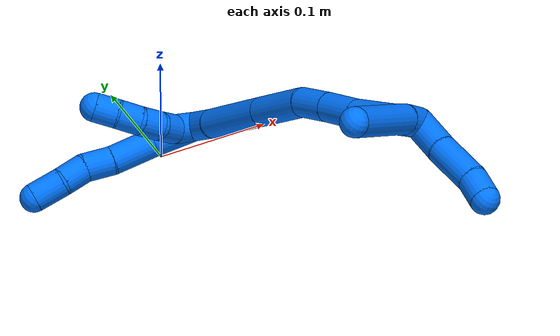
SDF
<sdf version="1.7">
 <world name="default">
  <model name="photoneo_s_sensor">
   <static>1</static>
   <pose>0 0 2 1.57079 1.57079 3.14159</pose>
   <link name="link">
    <inertial><mass>0.1</mass></inertial>
    <sensor name="sensor" type="depth">
     <update_rate>30</update_rate>
     <camera>
      <horizontal_fov>1.22</horizontal_fov>
      <image><width>1920</width><height>1200</height><format>B8G8R8</format></image>
      <clip><near>0.1</near><far>4</far></clip>
      <depth_camera><output>points</output></depth_camera>
     </camera>
     <plugin name="camera_plugin" filename="libgazebo_ros_depth_camera.so">
      <baseline>0.2</baseline>
      <alwaysOn>1</alwaysOn>
      <updateRate>0.0</updateRate>
      <cameraName>camera_ir</cameraName>
      <imageTopicName>/camera/color/image_raw</imageTopicName>
      <cameraInfoTopicName>/camera/color/camera_info</cameraInfoTopicName>
      <depthImageTopicName>/camera/depth/image_raw</depthImageTopicName>
      <depthImageCameraInfoTopicName>/camera/depth/camera_info</depthImageCameraInfoTopicName>
      <pointCloudTopicName>/camera/depth/points</pointCloudTopicName>
      <frameName>fr_optical</frameName>
      <pointCloudCutoff>0.1</pointCloudCutoff>
      <pointCloudCutoffMax>2.0</pointCloudCutoffMax>
      <distortionK1>0</distortionK1>
      <distortionK2>0</distortionK2>
      <distortionK3>0</distortionK3>
      <distortionT1>0</distortionT1>
      <distortionT2>0</distortionT2>
      <CxPrime>0</CxPrime>
      <Cx>0</Cx>
      <Cy>0</Cy>
      <focalLength>0</focalLength>
      <hackBaseline>0</hackBaseline>
     </plugin>
    </sensor>
   </link>
  </model>
  <model name="bin">
   <static>1</static>
   <link name="bottom">
    <collision name="collision-bottom">
     <pose>0 0 -0.01 0 -0 0</pose>
     <geometry><box><size>0.8 0.6 0.02</size></box></geometry>
     <surface>
      <friction><ode><mu>100</mu><mu2>100</mu2></ode></friction>
      <contact><collide_bitmask>65535</collide_bitmask></contact>
     </surface>
    </collision>
   </link>
   <link name="west_wall">
    <collision name="collision-west_wall">
     <pose>-0.41 0 0.1 0 -0 0</pose>
     <geometry><box><size>0.02 0.6 0.2</size></box></geometry>
     <surface>
      <friction><ode><mu>100</mu><mu2>100</mu2></ode></friction>
      <contact><collide_bitmask>65535</collide_bitmask></contact>
     </surface>
    </collision>
   </link>
   <link name="east_wall">
    <collision name="collision-east_wall">
     <pose>0.41 0 0.1 0 -0 0</pose>
     <geometry><box><size>0.02 0.6 0.2</size></box></geometry>
     <surface>
      <friction><ode><mu>100</mu><mu2>100</mu2></ode></friction>
      <contact><collide_bitmask>65535</collide_bitmask></contact>
     </surface>
    </collision>
   </link>
   <link name="south_wall">
    <collision name="collision-south_wall">
     <pose>0 -0.31 0.1 0 -0 0</pose>
     <geometry><box><size>0.8 0.02 0.2</size></box></geometry>
     <surface>
      <friction><ode><mu>100</mu><mu2>100</mu2></ode></friction>
      <contact><collide_bitmask>65535</collide_bitmask></contact>
     </surface>
    </collision>
   </link>
   <link name="north_wall">
    <collision name="collision-north_wall">
     <pose>0 0.31 0.1 0 -0 0</pose>
     <geometry><box><size>0.8 0.02 0.2</size></box></geometry>
     <surface>
      <friction><ode><mu>100</mu><mu2>100</mu2></ode></friction>
      <contact><collide_bitmask>65535</collide_bitmask></contact>
     </surface>
    </collision>
   </link>
  </model>
  <model name="14">
   <static>0</static>
   <link name="14">
    <collision name="collision-cylinder-e_1_2_8">
     <pose>-0.012861 0.00405 -0.012396 -2.8258 -0.778433 2.40098</pose>
     <geometry><cylinder><radius>0.0125</radius><length>0.036632</length></cylinder></geometry>
     <surface>
      <friction><ode><mu>1.16</mu><mu2>1.16</mu2><slip1>0</slip1><slip2>0</slip2></ode></friction>
      <contact><ode><kp>1e+06</kp><kd>1</kd><max_vel>0</max_vel><min_depth>0.001</min_depth></ode></contact>
     </surface>
    </collision>
    <visual name="visual-cylinder-e_1_2_8">
     <pose>-0.012861 0.00405 -0.012396 -2.8258 -0.778433 2.40098</pose>
     <geometry><cylinder><radius>0.0125</radius><length>0.036632</length></cylinder></geometry>
     <material><ambient>0 0.462745 1 1</ambient></material>
    </visual>
    <collision name="collision-cylinder-e_2_8_9">
     <pose>-0.041208 0.010443 -0.035934 -2.93433 -0.93686 2.73615</pose>
     <geometry><cylinder><radius>0.0125</radius><length>0.038441</length></cylinder></geometry>
     <surface>
      <friction><ode><mu>1.16</mu><mu2>1.16</mu2><slip1>0</slip1><slip2>0</slip2></ode></friction>
      <contact><ode><kp>1e+06</kp><kd>1</kd><max_vel>0</max_vel><min_depth>0.001</min_depth></ode></contact>
     </surface>
    </collision>
    <visual name="visual-cylinder-e_2_8_9">
     <pose>-0.041208 0.010443 -0.035934 -2.93433 -0.93686 2.73615</pose>
     <geometry><cylinder><radius>0.0125</radius><length>0.038441</length></cylinder></geometry>
     <material><ambient>0 0.462745 1 1</ambient></material>
    </visual>
    <collision name="collision-cylinder-e_3_9_10">
     <pose>-0.066648 0.016183 -0.053648 -2.6646 -0.931554 2.2406</pose>
     <geometry><cylinder><radius>0.0125</radius><length>0.024806</length></cylinder></geometry>
     <surface>
      <friction><ode><mu>1.16</mu><mu2>1.16</mu2><slip1>0</slip1><slip2>0</slip2></ode></friction>
      <contact><ode><kp>1e+06</kp><kd>1</kd><max_vel>0</max_vel><min_depth>0.001</min_depth></ode></contact>
     </surface>
    </collision>
    <visual name="visual-cylinder-e_3_9_10">
     <pose>-0.066648 0.016183 -0.053648 -2.6646 -0.931554 2.2406</pose>
     <geometry><cylinder><radius>0.0125</radius><length>0.024806</length></cylinder></geometry>
     <material><ambient>0 0.462745 1 1</ambient></material>
    </visual>
    <collision name="collision-cylinder-e_4_10_11">
     <pose>-0.08631 0.018946 -0.066165 3.03523 -1.01896 -2.95159</pose>
     <geometry><cylinder><radius>0.0125</radius><length>0.022801</length></cylinder></geometry>
     <surface>
      <friction><ode><mu>1.16</mu><mu2>1.16</mu2><slip1>0</slip1><slip2>0</slip2></ode></friction>
      <contact><ode><kp>1e+06</kp><kd>1</kd><max_vel>0</max_vel><min_depth>0.001</min_depth></ode></contact>
     </surface>
    </collision>
    <visual name="visual-cylinder-e_4_10_11">
     <pose>-0.08631 0.018946 -0.066165 3.03523 -1.01896 -2.95159</pose>
     <geometry><cylinder><radius>0.0125</radius><length>0.022801</length></cylinder></geometry>
     <material><ambient>0 0.462745 1 1</ambient></material>
    </visual>
    <collision name="collision-cylinder-e_5_11_6">
     <pose>-0.106066 0.019091 -0.081329 -3.05724 -0.826482 2.94969</pose>
     <geometry><cylinder><radius>0.0125</radius><length>0.027321</length></cylinder></geometry>
     <surface>
      <friction><ode><mu>1.16</mu><mu2>1.16</mu2><slip1>0</slip1><slip2>0</slip2></ode></friction>
      <contact><ode><kp>1e+06</kp><kd>1</kd><max_vel>0</max_vel><min_depth>0.001</min_depth></ode></contact>
     </surface>
    </collision>
    <visual name="visual-cylinder-e_5_11_6">
     <pose>-0.106066 0.019091 -0.081329 -3.05724 -0.826482 2.94969</pose>
     <geometry><cylinder><radius>0.0125</radius><length>0.027321</length></cylinder></geometry>
     <material><ambient>0 0.462745 1 1</ambient></material>
    </visual>
    <collision name="collision-cylinder-e_1_2_12">
     <pose>-0.00982 0.001644 -0.000936 -2.08821 -1.38051 1.91455</pose>
     <geometry><cylinder><radius>0.0125</radius><length>0.02</length></cylinder></geometry>
     <surface>
      <friction><ode><mu>1.16</mu><mu2>1.16</mu2><slip1>0</slip1><slip2>0</slip2></ode></friction>
      <contact><ode><kp>1e+06</kp><kd>1</kd><max_vel>0</max_vel><min_depth>0.001</min_depth></ode></contact>
     </surface>
    </collision>
    <visual name="visual-cylinder-e_1_2_12">
     <pose>-0.00982 0.001644 -0.000936 -2.08821 -1.38051 1.91455</pose>
     <geometry><cylinder><radius>0.0125</radius><length>0.02</length></cylinder></geometry>
     <material><ambient>0 0.462745 1 1</ambient></material>
    </visual>
    <collision name="collision-cylinder-e_2_12_13">
     <pose>-0.029115 0.005331 0.000585 -0.693883 -1.24558 0.508083</pose>
     <geometry><cylinder><radius>0.0125</radius><length>0.02</length></cylinder></geometry>
     <surface>
      <friction><ode><mu>1.16</mu><mu2>1.16</mu2><slip1>0</slip1><slip2>0</slip2></ode></friction>
      <contact><ode><kp>1e+06</kp><kd>1</kd><max_vel>0</max_vel><min_depth>0.001</min_depth></ode></contact>
     </surface>
    </collision>
    <visual name="visual-cylinder-e_2_12_13">
     <pose>-0.029115 0.005331 0.000585 -0.693883 -1.24558 0.508083</pose>
     <geometry><cylinder><radius>0.0125</radius><length>0.02</length></cylinder></geometry>
     <material><ambient>0 0.462745 1 1</ambient></material>
    </visual>
    <collision name="collision-cylinder-e_3_13_14">
     <pose>-0.047544 0.011797 0.003561 -1.45388 -1.10923 1.00718</pose>
     <geometry><cylinder><radius>0.0125</radius><length>0.02</length></cylinder></geometry>
     <surface>
      <friction><ode><mu>1.16</mu><mu2>1.16</mu2><slip1>0</slip1><slip2>0</slip2></ode></friction>
      <contact><ode><kp>1e+06</kp><kd>1</kd><max_vel>0</max_vel><min_depth>0.001</min_depth></ode></contact>
     </surface>
    </collision>
    <visual name="visual-cylinder-e_3_13_14">
     <pose>-0.047544 0.011797 0.003561 -1.45388 -1.10923 1.00718</pose>
     <geometry><cylinder><radius>0.0125</radius><length>0.02</length></cylinder></geometry>
     <material><ambient>0 0.462745 1 1</ambient></material>
    </visual>
    <collision name="collision-cylinder-e_4_14_15">
     <pose>-0.064052 0.022648 0.002806 -1.76653 -0.856284 1.01448</pose>
     <geometry><cylinder><radius>0.0125</radius><length>0.02</length></cylinder></geometry>
     <surface>
      <friction><ode><mu>1.16</mu><mu2>1.16</mu2><slip1>0</slip1><slip2>0</slip2></ode></friction>
      <contact><ode><kp>1e+06</kp><kd>1</kd><max_vel>0</max_vel><min_depth>0.001</min_depth></ode></contact>
     </surface>
    </collision>
    <visual name="visual-cylinder-e_4_14_15">
     <pose>-0.064052 0.022648 0.002806 -1.76653 -0.856284 1.01448</pose>
     <geometry><cylinder><radius>0.0125</radius><length>0.02</length></cylinder></geometry>
     <material><ambient>0 0.462745 1 1</ambient></material>
    </visual>
    <collision name="collision-cylinder-e_5_15_5">
     <pose>-0.078273 0.03613 -0.000871 -1.89906 -0.72983 0.980464</pose>
     <geometry><cylinder><radius>0.0125</radius><length>0.02</length></cylinder></geometry>
     <surface>
      <friction><ode><mu>1.16</mu><mu2>1.16</mu2><slip1>0</slip1><slip2>0</slip2></ode></friction>
      <contact><ode><kp>1e+06</kp><kd>1</kd><max_vel>0</max_vel><min_depth>0.001</min_depth></ode></contact>
     </surface>
    </collision>
    <visual name="visual-cylinder-e_5_15_5">
     <pose>-0.078273 0.03613 -0.000871 -1.89906 -0.72983 0.980464</pose>
     <geometry><cylinder><radius>0.0125</radius><length>0.02</length></cylinder></geometry>
     <material><ambient>0 0.462745 1 1</ambient></material>
    </visual>
    <collision name="collision-cylinder-e_1_2_16">
     <pose>-0.002891 -0.007161 0.012158 0.532287 -0.202107 -0.055271</pose>
     <geometry><cylinder><radius>0.0125</radius><length>0.028808</length></cylinder></geometry>
     <surface>
      <friction><ode><mu>1.16</mu><mu2>1.16</mu2><slip1>0</slip1><slip2>0</slip2></ode></friction>
      <contact><ode><kp>1e+06</kp><kd>1</kd><max_vel>0</max_vel><min_depth>0.001</min_depth></ode></contact>
     </surface>
    </collision>
    <visual name="visual-cylinder-e_1_2_16">
     <pose>-0.002891 -0.007161 0.012158 0.532287 -0.202107 -0.055271</pose>
     <geometry><cylinder><radius>0.0125</radius><length>0.028808</length></cylinder></geometry>
     <material><ambient>0 0.462745 1 1</ambient></material>
    </visual>
    <collision name="collision-cylinder-e_2_16_17">
     <pose>-0.010934 -0.031179 0.055533 0.495135 -0.144194 -0.036505</pose>
     <geometry><cylinder><radius>0.0125</radius><length>0.071697</length></cylinder></geometry>
     <surface>
      <friction><ode><mu>1.16</mu><mu2>1.16</mu2><slip1>0</slip1><slip2>0</slip2></ode></friction>
      <contact><ode><kp>1e+06</kp><kd>1</kd><max_vel>0</max_vel><min_depth>0.001</min_depth></ode></contact>
     </surface>
    </collision>
    <visual name="visual-cylinder-e_2_16_17">
     <pose>-0.010934 -0.031179 0.055533 0.495135 -0.144194 -0.036505</pose>
     <geometry><cylinder><radius>0.0125</radius><length>0.071697</length></cylinder></geometry>
     <material><ambient>0 0.462745 1 1</ambient></material>
    </visual>
    <collision name="collision-cylinder-e_3_17_18">
     <pose>-0.020153 -0.061563 0.111483 0.500448 -0.1433 -0.036683</pose>
     <geometry><cylinder><radius>0.0125</radius><length>0.056966</length></cylinder></geometry>
     <surface>
      <friction><ode><mu>1.16</mu><mu2>1.16</mu2><slip1>0</slip1><slip2>0</slip2></ode></friction>
      <contact><ode><kp>1e+06</kp><kd>1</kd><max_vel>0</max_vel><min_depth>0.001</min_depth></ode></contact>
     </surface>
    </collision>
    <visual name="visual-cylinder-e_3_17_18">
     <pose>-0.020153 -0.061563 0.111483 0.500448 -0.1433 -0.036683</pose>
     <geometry><cylinder><radius>0.0125</radius><length>0.056966</length></cylinder></geometry>
     <material><ambient>0 0.462745 1 1</ambient></material>
    </visual>
    <collision name="collision-cylinder-e_4_18_19">
     <pose>-0.026855 -0.086714 0.14831 0.765674 -0.155779 -0.06284</pose>
     <geometry><cylinder><radius>0.0125</radius><length>0.03396</length></cylinder></geometry>
     <surface>
      <friction><ode><mu>1.16</mu><mu2>1.16</mu2><slip1>0</slip1><slip2>0</slip2></ode></friction>
      <contact><ode><kp>1e+06</kp><kd>1</kd><max_vel>0</max_vel><min_depth>0.001</min_depth></ode></contact>
     </surface>
    </collision>
    <visual name="visual-cylinder-e_4_18_19">
     <pose>-0.026855 -0.086714 0.14831 0.765674 -0.155779 -0.06284</pose>
     <geometry><cylinder><radius>0.0125</radius><length>0.03396</length></cylinder></geometry>
     <material><ambient>0 0.462745 1 1</ambient></material>
    </visual>
    <collision name="collision-cylinder-e_5_19_20">
     <pose>-0.032144 -0.111097 0.172831 0.79851 -0.147959 -0.06252</pose>
     <geometry><cylinder><radius>0.0125</radius><length>0.036016</length></cylinder></geometry>
     <surface>
      <friction><ode><mu>1.16</mu><mu2>1.16</mu2><slip1>0</slip1><slip2>0</slip2></ode></friction>
      <contact><ode><kp>1e+06</kp><kd>1</kd><max_vel>0</max_vel><min_depth>0.001</min_depth></ode></contact>
     </surface>
    </collision>
    <visual name="visual-cylinder-e_5_19_20">
     <pose>-0.032144 -0.111097 0.172831 0.79851 -0.147959 -0.06252</pose>
     <geometry><cylinder><radius>0.0125</radius><length>0.036016</length></cylinder></geometry>
     <material><ambient>0 0.462745 1 1</ambient></material>
    </visual>
    <collision name="collision-cylinder-e_6_20_1">
     <pose>-0.038424 -0.148241 0.211871 0.741754 -0.100103 -0.038955</pose>
     <geometry><cylinder><radius>0.0125</radius><length>0.072554</length></cylinder></geometry>
     <surface>
      <friction><ode><mu>1.16</mu><mu2>1.16</mu2><slip1>0</slip1><slip2>0</slip2></ode></friction>
      <contact><ode><kp>1e+06</kp><kd>1</kd><max_vel>0</max_vel><min_depth>0.001</min_depth></ode></contact>
     </surface>
    </collision>
    <visual name="visual-cylinder-e_6_20_1">
     <pose>-0.038424 -0.148241 0.211871 0.741754 -0.100103 -0.038955</pose>
     <geometry><cylinder><radius>0.0125</radius><length>0.072554</length></cylinder></geometry>
     <material><ambient>0 0.462745 1 1</ambient></material>
    </visual>
    <collision name="collision-cylinder-e_1_1_21">
     <pose>-0.046238 -0.189578 0.243777 1.26813 -0.231596 -0.170656</pose>
     <geometry><cylinder><radius>0.0125</radius><length>0.036493</length></cylinder></geometry>
     <surface>
      <friction><ode><mu>1.16</mu><mu2>1.16</mu2><slip1>0</slip1><slip2>0</slip2></ode></friction>
      <contact><ode><kp>1e+06</kp><kd>1</kd><max_vel>0</max_vel><min_depth>0.001</min_depth></ode></contact>
     </surface>
    </collision>
    <visual name="visual-cylinder-e_1_1_21">
     <pose>-0.046238 -0.189578 0.243777 1.26813 -0.231596 -0.170656</pose>
     <geometry><cylinder><radius>0.0125</radius><length>0.036493</length></cylinder></geometry>
     <material><ambient>0 0.462745 1 1</ambient></material>
    </visual>
    <collision name="collision-cylinder-e_2_21_22">
     <pose>-0.053254 -0.225891 0.255237 1.26244 -0.138281 -0.101156</pose>
     <geometry><cylinder><radius>0.0125</radius><length>0.041028</length></cylinder></geometry>
     <surface>
      <friction><ode><mu>1.16</mu><mu2>1.16</mu2><slip1>0</slip1><slip2>0</slip2></ode></friction>
      <contact><ode><kp>1e+06</kp><kd>1</kd><max_vel>0</max_vel><min_depth>0.001</min_depth></ode></contact>
     </surface>
    </collision>
    <visual name="visual-cylinder-e_2_21_22">
     <pose>-0.053254 -0.225891 0.255237 1.26244 -0.138281 -0.101156</pose>
     <geometry><cylinder><radius>0.0125</radius><length>0.041028</length></cylinder></geometry>
     <material><ambient>0 0.462745 1 1</ambient></material>
    </visual>
    <collision name="collision-cylinder-e_3_22_4">
     <pose>-0.059264 -0.255882 0.263183 1.40494 -0.287138 -0.243542</pose>
     <geometry><cylinder><radius>0.0125</radius><length>0.022478</length></cylinder></geometry>
     <surface>
      <friction><ode><mu>1.16</mu><mu2>1.16</mu2><slip1>0</slip1><slip2>0</slip2></ode></friction>
      <contact><ode><kp>1e+06</kp><kd>1</kd><max_vel>0</max_vel><min_depth>0.001</min_depth></ode></contact>
     </surface>
    </collision>
    <visual name="visual-cylinder-e_3_22_4">
     <pose>-0.059264 -0.255882 0.263183 1.40494 -0.287138 -0.243542</pose>
     <geometry><cylinder><radius>0.0125</radius><length>0.022478</length></cylinder></geometry>
     <material><ambient>0 0.462745 1 1</ambient></material>
    </visual>
    <collision name="collision-cylinder-e_1_1_23">
     <pose>-0.052373 -0.17138 0.242127 -0.329694 -1.2138 0.22999</pose>
     <geometry><cylinder><radius>0.0125</radius><length>0.022036</length></cylinder></geometry>
     <surface>
      <friction><ode><mu>1.16</mu><mu2>1.16</mu2><slip1>0</slip1><slip2>0</slip2></ode></friction>
      <contact><ode><kp>1e+06</kp><kd>1</kd><max_vel>0</max_vel><min_depth>0.001</min_depth></ode></contact>
     </surface>
    </collision>
    <visual name="visual-cylinder-e_1_1_23">
     <pose>-0.052373 -0.17138 0.242127 -0.329694 -1.2138 0.22999</pose>
     <geometry><cylinder><radius>0.0125</radius><length>0.022036</length></cylinder></geometry>
     <material><ambient>0 0.462745 1 1</ambient></material>
    </visual>
    <collision name="collision-cylinder-e_2_23_3">
     <pose>-0.100382 -0.170957 0.255704 0.082755 -1.3122 -0.063726</pose>
     <geometry><cylinder><radius>0.0125</radius><length>0.077964</length></cylinder></geometry>
     <surface>
      <friction><ode><mu>1.16</mu><mu2>1.16</mu2><slip1>0</slip1><slip2>0</slip2></ode></friction>
      <contact><ode><kp>1e+06</kp><kd>1</kd><max_vel>0</max_vel><min_depth>0.001</min_depth></ode></contact>
     </surface>
    </collision>
    <visual name="visual-cylinder-e_2_23_3">
     <pose>-0.100382 -0.170957 0.255704 0.082755 -1.3122 -0.063726</pose>
     <geometry><cylinder><radius>0.0125</radius><length>0.077964</length></cylinder></geometry>
     <material><ambient>0 0.462745 1 1</ambient></material>
    </visual>
    <collision name="collision-sphere-3">
     <pose>-0.138068 -0.171781 0.265639 0 -0 0</pose>
     <geometry><sphere><radius>0.0125</radius></sphere></geometry>
     <surface>
      <friction><ode><mu>1.16</mu><mu2>1.16</mu2><slip1>0</slip1><slip2>0</slip2></ode></friction>
      <contact><ode><kp>1e+06</kp><kd>1</kd><max_vel>0</max_vel><min_depth>0.001</min_depth></ode></contact>
     </surface>
    </collision>
    <visual name="visual-sphere-3">
     <pose>-0.138068 -0.171781 0.265639 0 -0 0</pose>
     <geometry><sphere><radius>0.0125</radius></sphere></geometry>
     <material><ambient>0 0.462745 1 1</ambient></material>
    </visual>
    <collision name="collision-sphere-23">
     <pose>-0.062696 -0.170133 0.24577 0 -0 0</pose>
     <geometry><sphere><radius>0.0125</radius></sphere></geometry>
     <surface>
      <friction><ode><mu>1.16</mu><mu2>1.16</mu2><slip1>0</slip1><slip2>0</slip2></ode></friction>
      <contact><ode><kp>1e+06</kp><kd>1</kd><max_vel>0</max_vel><min_depth>0.001</min_depth></ode></contact>
     </surface>
    </collision>
    <visual name="visual-sphere-23">
     <pose>-0.062696 -0.170133 0.24577 0 -0 0</pose>
     <geometry><sphere><radius>0.0125</radius></sphere></geometry>
     <material><ambient>0 0.462745 1 1</ambient></material>
    </visual>
    <collision name="collision-sphere-4">
     <pose>-0.062447 -0.266513 0.264963 0 -0 0</pose>
     <geometry><sphere><radius>0.0125</radius></sphere></geometry>
     <surface>
      <friction><ode><mu>1.16</mu><mu2>1.16</mu2><slip1>0</slip1><slip2>0</slip2></ode></friction>
      <contact><ode><kp>1e+06</kp><kd>1</kd><max_vel>0</max_vel><min_depth>0.001</min_depth></ode></contact>
     </surface>
    </collision>
    <visual name="visual-sphere-4">
     <pose>-0.062447 -0.266513 0.264963 0 -0 0</pose>
     <geometry><sphere><radius>0.0125</radius></sphere></geometry>
     <material><ambient>0 0.462745 1 1</ambient></material>
    </visual>
    <collision name="collision-sphere-22">
     <pose>-0.056081 -0.245251 0.261404 0 -0 0</pose>
     <geometry><sphere><radius>0.0125</radius></sphere></geometry>
     <surface>
      <friction><ode><mu>1.16</mu><mu2>1.16</mu2><slip1>0</slip1><slip2>0</slip2></ode></friction>
      <contact><ode><kp>1e+06</kp><kd>1</kd><max_vel>0</max_vel><min_depth>0.001</min_depth></ode></contact>
     </surface>
    </collision>
    <visual name="visual-sphere-22">
     <pose>-0.056081 -0.245251 0.261404 0 -0 0</pose>
     <geometry><sphere><radius>0.0125</radius></sphere></geometry>
     <material><ambient>0 0.462745 1 1</ambient></material>
    </visual>
    <collision name="collision-sphere-21">
     <pose>-0.050426 -0.206531 0.249071 0 -0 0</pose>
     <geometry><sphere><radius>0.0125</radius></sphere></geometry>
     <surface>
      <friction><ode><mu>1.16</mu><mu2>1.16</mu2><slip1>0</slip1><slip2>0</slip2></ode></friction>
      <contact><ode><kp>1e+06</kp><kd>1</kd><max_vel>0</max_vel><min_depth>0.001</min_depth></ode></contact>
     </surface>
    </collision>
    <visual name="visual-sphere-21">
     <pose>-0.050426 -0.206531 0.249071 0 -0 0</pose>
     <geometry><sphere><radius>0.0125</radius></sphere></geometry>
     <material><ambient>0 0.462745 1 1</ambient></material>
    </visual>
    <collision name="collision-sphere-1">
     <pose>-0.04205 -0.172626 0.238484 0 -0 0</pose>
     <geometry><sphere><radius>0.0125</radius></sphere></geometry>
     <surface>
      <friction><ode><mu>1.16</mu><mu2>1.16</mu2><slip1>0</slip1><slip2>0</slip2></ode></friction>
      <contact><ode><kp>1e+06</kp><kd>1</kd><max_vel>0</max_vel><min_depth>0.001</min_depth></ode></contact>
     </surface>
    </collision>
    <visual name="visual-sphere-1">
     <pose>-0.04205 -0.172626 0.238484 0 -0 0</pose>
     <geometry><sphere><radius>0.0125</radius></sphere></geometry>
     <material><ambient>0 0.462745 1 1</ambient></material>
    </visual>
    <collision name="collision-sphere-6">
     <pose>-0.116113 0.019871 -0.090551 0 -0 0</pose>
     <geometry><sphere><radius>0.0125</radius></sphere></geometry>
     <surface>
      <friction><ode><mu>1.16</mu><mu2>1.16</mu2><slip1>0</slip1><slip2>0</slip2></ode></friction>
      <contact><ode><kp>1e+06</kp><kd>1</kd><max_vel>0</max_vel><min_depth>0.001</min_depth></ode></contact>
     </surface>
    </collision>
    <visual name="visual-sphere-6">
     <pose>-0.116113 0.019871 -0.090551 0 -0 0</pose>
     <geometry><sphere><radius>0.0125</radius></sphere></geometry>
     <material><ambient>0 0.462745 1 1</ambient></material>
    </visual>
    <collision name="collision-sphere-11">
     <pose>-0.096018 0.018311 -0.072108 0 -0 0</pose>
     <geometry><sphere><radius>0.0125</radius></sphere></geometry>
     <surface>
      <friction><ode><mu>1.16</mu><mu2>1.16</mu2><slip1>0</slip1><slip2>0</slip2></ode></friction>
      <contact><ode><kp>1e+06</kp><kd>1</kd><max_vel>0</max_vel><min_depth>0.001</min_depth></ode></contact>
     </surface>
    </collision>
    <visual name="visual-sphere-11">
     <pose>-0.096018 0.018311 -0.072108 0 -0 0</pose>
     <geometry><sphere><radius>0.0125</radius></sphere></geometry>
     <material><ambient>0 0.462745 1 1</ambient></material>
    </visual>
    <collision name="collision-sphere-10">
     <pose>-0.076602 0.01958 -0.060222 0 -0 0</pose>
     <geometry><sphere><radius>0.0125</radius></sphere></geometry>
     <surface>
      <friction><ode><mu>1.16</mu><mu2>1.16</mu2><slip1>0</slip1><slip2>0</slip2></ode></friction>
      <contact><ode><kp>1e+06</kp><kd>1</kd><max_vel>0</max_vel><min_depth>0.001</min_depth></ode></contact>
     </surface>
    </collision>
    <visual name="visual-sphere-10">
     <pose>-0.076602 0.01958 -0.060222 0 -0 0</pose>
     <geometry><sphere><radius>0.0125</radius></sphere></geometry>
     <material><ambient>0 0.462745 1 1</ambient></material>
    </visual>
    <collision name="collision-sphere-9">
     <pose>-0.056694 0.012786 -0.047075 0 -0 0</pose>
     <geometry><sphere><radius>0.0125</radius></sphere></geometry>
     <surface>
      <friction><ode><mu>1.16</mu><mu2>1.16</mu2><slip1>0</slip1><slip2>0</slip2></ode></friction>
      <contact><ode><kp>1e+06</kp><kd>1</kd><max_vel>0</max_vel><min_depth>0.001</min_depth></ode></contact>
     </surface>
    </collision>
    <visual name="visual-sphere-9">
     <pose>-0.056694 0.012786 -0.047075 0 -0 0</pose>
     <geometry><sphere><radius>0.0125</radius></sphere></geometry>
     <material><ambient>0 0.462745 1 1</ambient></material>
    </visual>
    <collision name="collision-sphere-2">
     <geometry><sphere><radius>0.0125</radius></sphere></geometry>
     <surface>
      <friction><ode><mu>1.16</mu><mu2>1.16</mu2><slip1>0</slip1><slip2>0</slip2></ode></friction>
      <contact><ode><kp>1e+06</kp><kd>1</kd><max_vel>0</max_vel><min_depth>0.001</min_depth></ode></contact>
     </surface>
    </collision>
    <visual name="visual-sphere-2">
     <geometry><sphere><radius>0.0125</radius></sphere></geometry>
     <material><ambient>0 0.462745 1 1</ambient></material>
    </visual>
    <collision name="collision-sphere-19">
     <pose>-0.029489 -0.098339 0.160402 0 -0 0</pose>
     <geometry><sphere><radius>0.0125</radius></sphere></geometry>
     <surface>
      <friction><ode><mu>1.16</mu><mu2>1.16</mu2><slip1>0</slip1><slip2>0</slip2></ode></friction>
      <contact><ode><kp>1e+06</kp><kd>1</kd><max_vel>0</max_vel><min_depth>0.001</min_depth></ode></contact>
     </surface>
    </collision>
    <visual name="visual-sphere-19">
     <pose>-0.029489 -0.098339 0.160402 0 -0 0</pose>
     <geometry><sphere><radius>0.0125</radius></sphere></geometry>
     <material><ambient>0 0.462745 1 1</ambient></material>
    </visual>
    <collision name="collision-sphere-8">
     <pose>-0.025722 0.008101 -0.024793 0 -0 0</pose>
     <geometry><sphere><radius>0.0125</radius></sphere></geometry>
     <surface>
      <friction><ode><mu>1.16</mu><mu2>1.16</mu2><slip1>0</slip1><slip2>0</slip2></ode></friction>
      <contact><ode><kp>1e+06</kp><kd>1</kd><max_vel>0</max_vel><min_depth>0.001</min_depth></ode></contact>
     </surface>
    </collision>
    <visual name="visual-sphere-8">
     <pose>-0.025722 0.008101 -0.024793 0 -0 0</pose>
     <geometry><sphere><radius>0.0125</radius></sphere></geometry>
     <material><ambient>0 0.462745 1 1</ambient></material>
    </visual>
    <collision name="collision-sphere-12">
     <pose>-0.019639 0.003288 -0.001871 0 -0 0</pose>
     <geometry><sphere><radius>0.0125</radius></sphere></geometry>
     <surface>
      <friction><ode><mu>1.16</mu><mu2>1.16</mu2><slip1>0</slip1><slip2>0</slip2></ode></friction>
      <contact><ode><kp>1e+06</kp><kd>1</kd><max_vel>0</max_vel><min_depth>0.001</min_depth></ode></contact>
     </surface>
    </collision>
    <visual name="visual-sphere-12">
     <pose>-0.019639 0.003288 -0.001871 0 -0 0</pose>
     <geometry><sphere><radius>0.0125</radius></sphere></geometry>
     <material><ambient>0 0.462745 1 1</ambient></material>
    </visual>
    <collision name="collision-sphere-13">
     <pose>-0.038591 0.007374 0.003042 0 -0 0</pose>
     <geometry><sphere><radius>0.0125</radius></sphere></geometry>
     <surface>
      <friction><ode><mu>1.16</mu><mu2>1.16</mu2><slip1>0</slip1><slip2>0</slip2></ode></friction>
      <contact><ode><kp>1e+06</kp><kd>1</kd><max_vel>0</max_vel><min_depth>0.001</min_depth></ode></contact>
     </surface>
    </collision>
    <visual name="visual-sphere-13">
     <pose>-0.038591 0.007374 0.003042 0 -0 0</pose>
     <geometry><sphere><radius>0.0125</radius></sphere></geometry>
     <material><ambient>0 0.462745 1 1</ambient></material>
    </visual>
    <collision name="collision-sphere-14">
     <pose>-0.056498 0.016221 0.004081 0 -0 0</pose>
     <geometry><sphere><radius>0.0125</radius></sphere></geometry>
     <surface>
      <friction><ode><mu>1.16</mu><mu2>1.16</mu2><slip1>0</slip1><slip2>0</slip2></ode></friction>
      <contact><ode><kp>1e+06</kp><kd>1</kd><max_vel>0</max_vel><min_depth>0.001</min_depth></ode></contact>
     </surface>
    </collision>
    <visual name="visual-sphere-14">
     <pose>-0.056498 0.016221 0.004081 0 -0 0</pose>
     <geometry><sphere><radius>0.0125</radius></sphere></geometry>
     <material><ambient>0 0.462745 1 1</ambient></material>
    </visual>
    <collision name="collision-sphere-15">
     <pose>-0.071606 0.029075 0.001532 0 -0 0</pose>
     <geometry><sphere><radius>0.0125</radius></sphere></geometry>
     <surface>
      <friction><ode><mu>1.16</mu><mu2>1.16</mu2><slip1>0</slip1><slip2>0</slip2></ode></friction>
      <contact><ode><kp>1e+06</kp><kd>1</kd><max_vel>0</max_vel><min_depth>0.001</min_depth></ode></contact>
     </surface>
    </collision>
    <visual name="visual-sphere-15">
     <pose>-0.071606 0.029075 0.001532 0 -0 0</pose>
     <geometry><sphere><radius>0.0125</radius></sphere></geometry>
     <material><ambient>0 0.462745 1 1</ambient></material>
    </visual>
    <collision name="collision-sphere-5">
     <pose>-0.084941 0.043185 -0.003274 0 -0 0</pose>
     <geometry><sphere><radius>0.0125</radius></sphere></geometry>
     <surface>
      <friction><ode><mu>1.16</mu><mu2>1.16</mu2><slip1>0</slip1><slip2>0</slip2></ode></friction>
      <contact><ode><kp>1e+06</kp><kd>1</kd><max_vel>0</max_vel><min_depth>0.001</min_depth></ode></contact>
     </surface>
    </collision>
    <visual name="visual-sphere-5">
     <pose>-0.084941 0.043185 -0.003274 0 -0 0</pose>
     <geometry><sphere><radius>0.0125</radius></sphere></geometry>
     <material><ambient>0 0.462745 1 1</ambient></material>
    </visual>
    <collision name="collision-sphere-16">
     <pose>-0.005783 -0.014322 0.024317 0 -0 0</pose>
     <geometry><sphere><radius>0.0125</radius></sphere></geometry>
     <surface>
      <friction><ode><mu>1.16</mu><mu2>1.16</mu2><slip1>0</slip1><slip2>0</slip2></ode></friction>
      <contact><ode><kp>1e+06</kp><kd>1</kd><max_vel>0</max_vel><min_depth>0.001</min_depth></ode></contact>
     </surface>
    </collision>
    <visual name="visual-sphere-16">
     <pose>-0.005783 -0.014322 0.024317 0 -0 0</pose>
     <geometry><sphere><radius>0.0125</radius></sphere></geometry>
     <material><ambient>0 0.462745 1 1</ambient></material>
    </visual>
    <collision name="collision-sphere-17">
     <pose>-0.016085 -0.048036 0.086749 0 -0 0</pose>
     <geometry><sphere><radius>0.0125</radius></sphere></geometry>
     <surface>
      <friction><ode><mu>1.16</mu><mu2>1.16</mu2><slip1>0</slip1><slip2>0</slip2></ode></friction>
      <contact><ode><kp>1e+06</kp><kd>1</kd><max_vel>0</max_vel><min_depth>0.001</min_depth></ode></contact>
     </surface>
    </collision>
    <visual name="visual-sphere-17">
     <pose>-0.016085 -0.048036 0.086749 0 -0 0</pose>
     <geometry><sphere><radius>0.0125</radius></sphere></geometry>
     <material><ambient>0 0.462745 1 1</ambient></material>
    </visual>
    <collision name="collision-sphere-18">
     <pose>-0.024221 -0.075089 0.136217 0 -0 0</pose>
     <geometry><sphere><radius>0.0125</radius></sphere></geometry>
     <surface>
      <friction><ode><mu>1.16</mu><mu2>1.16</mu2><slip1>0</slip1><slip2>0</slip2></ode></friction>
      <contact><ode><kp>1e+06</kp><kd>1</kd><max_vel>0</max_vel><min_depth>0.001</min_depth></ode></contact>
     </surface>
    </collision>
    <visual name="visual-sphere-18">
     <pose>-0.024221 -0.075089 0.136217 0 -0 0</pose>
     <geometry><sphere><radius>0.0125</radius></sphere></geometry>
     <material><ambient>0 0.462745 1 1</ambient></material>
    </visual>
    <collision name="collision-sphere-20">
     <pose>-0.034799 -0.123856 0.185259 0 -0 0</pose>
     <geometry><sphere><radius>0.0125</radius></sphere></geometry>
     <surface>
      <friction><ode><mu>1.16</mu><mu2>1.16</mu2><slip1>0</slip1><slip2>0</slip2></ode></friction>
      <contact><ode><kp>1e+06</kp><kd>1</kd><max_vel>0</max_vel><min_depth>0.001</min_depth></ode></contact>
     </surface>
    </collision>
    <visual name="visual-sphere-20">
     <pose>-0.034799 -0.123856 0.185259 0 -0 0</pose>
     <geometry><sphere><radius>0.0125</radius></sphere></geometry>
     <material><ambient>0 0.462745 1 1</ambient></material>
    </visual>
    <inertial>
     <pose>-0.04561 -0.078983 0.108103 0 -0 0</pose>
     <mass>0.75</mass>
     <inertia>
      <ixx>8.9e-05</ixx>
      <ixy>0</ixy>
      <ixz>0</ixz>
      <iyy>0.000137</iyy>
      <iyz>0</iyz>
      <izz>0.000159</izz>
     </inertia>
    </inertial>
   </link>
   <pose>0.002627 -0.057261 0.070311 0.454374 0.292911 0.300672</pose>
  </model>
 </world>
</sdf>
